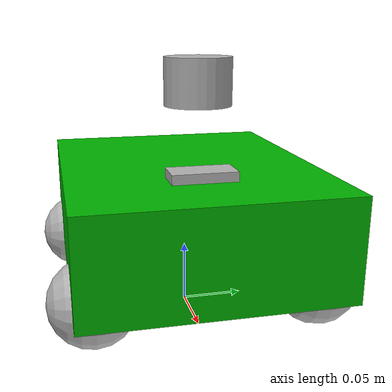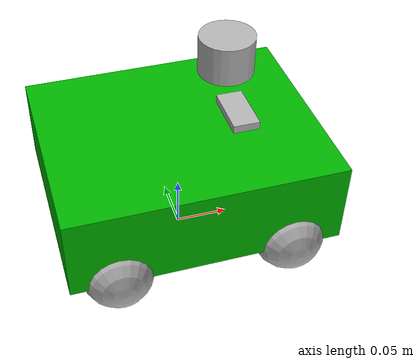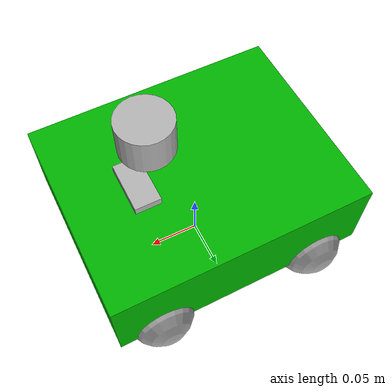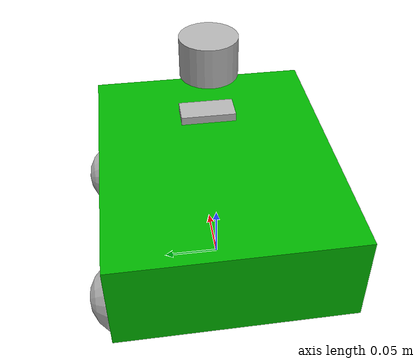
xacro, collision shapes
<?xml version="1.0"?>
<robot xmlns:xacro="http://www.ros.org/wiki/xacro" name="yahboomcar">

  <!-- GEOMETRIA DO ROBÔ                                                      -->

  <link name="base_footprint"/>
  <link name="imu_link"/>

  <link name="base_link">
    <inertial>
      <origin xyz="0.00498197982182523 5.70233829969297E-05 -0.0121008098068578" rpy="0 0 0"/>
      <mass value="0.486218814966626"/>
      <inertia ixx="0.00196277727666921" ixy="2.50447049446755E-07" ixz="0.000140534767811098"
               iyy="0.00457256033711368" iyz="2.68618064993882E-07"  izz="0.00493927269870476"/>
    </inertial>
    <visual>
      <origin xyz="0 0 0" rpy="0 0 0"/>
      <geometry>
        <mesh filename="package://robodog2/meshes/mecanum/base_link_X3.STL"/>
      </geometry>
      <material name="Green"><color rgba="0 0.7 0 1"/></material>
    </visual>
    <collision>
      <origin xyz="0 0 0" rpy="0 0 0"/>
      <geometry>
        <box size="0.25 0.20 0.08"/>
      </geometry>
    </collision>
  </link>

  <joint name="base_joint" type="fixed">
    <parent link="base_footprint"/>
    <child link="base_link"/>
    <origin xyz="0.0 0.0 0.0815" rpy="0 0 0"/>
  </joint>

  <joint name="base_imu" type="fixed">
    <parent link="base_link"/>
    <child link="imu_link"/>
    <origin xyz="-0.06 0.01 0.01" rpy="0 3.1415 1.5707"/>
  </joint>

  <!-- Roda dianteira direita -->
  <link name="front_right_wheel">
    <inertial>
      <origin xyz="1.9051E-06 -2.3183E-07 -0.00064079" rpy="0 0 0"/>
      <mass value="0.051532"/>
      <inertia ixx="1.4595E-05" ixy="-4.3975E-10" ixz="4.415E-10"
               iyy="1.4594E-05" iyz="-1.7476E-09" izz="2.4264E-05"/>
    </inertial>
    <visual>
      <origin xyz="0 0 0" rpy="0 0 0"/>
      <geometry>
        <mesh filename="package://robodog2/meshes/mecanum/front_right_wheel_X3.STL"/>
      </geometry>
      <material name="LightGray"><color rgba="0.7 0.7 0.7 1"/></material>
    </visual>
    <collision>
      <origin xyz="0 0 0" rpy="0 0 0"/>
      <geometry>
        <sphere radius="0.033"/>
      </geometry>
    </collision>
  </link>
  <joint name="front_right_joint" type="continuous">
    <origin xyz="0.08 -0.0845 -0.0389" rpy="-1.5703 0 3.14159"/>
    <parent link="base_link"/>
    <child link="front_right_wheel"/>
    <axis xyz="0 0 -1" rpy="0 0 0"/>
    <limit effort="100" velocity="1"/>
  </joint>

  <!-- Roda dianteira esquerda -->
  <link name="front_left_wheel">
    <inertial>
      <origin xyz="2.3728E-06 -9.4228E-07 0.00064068" rpy="0 0 0"/>
      <mass value="0.051543"/>
      <inertia ixx="1.4597E-05" ixy="-4.7945E-10" ixz="-2.4786E-10"
               iyy="1.4598E-05" iyz="1.7972E-09"  izz="2.4267E-05"/>
    </inertial>
    <visual>
      <origin xyz="0 0 0" rpy="0 0 0"/>
      <geometry>
        <mesh filename="package://robodog2/meshes/mecanum/front_left_wheel_X3.STL"/>
      </geometry>
      <material name="LightGray"/>
    </visual>
    <collision>
      <origin xyz="0 0 0" rpy="0 0 0"/>
      <geometry>
        <sphere radius="0.033"/>
      </geometry>
    </collision>
  </link>
  <joint name="front_left_joint" type="continuous">
    <origin xyz="0.08 0.084492 -0.0389" rpy="1.5703 0 0"/>
    <parent link="base_link"/>
    <child link="front_left_wheel"/>
    <axis xyz="0 0 1" rpy="0 0 0"/>
    <limit effort="100" velocity="1"/>
  </joint>

  <!-- Roda traseira direita -->
  <link name="back_right_wheel">
    <inertial>
      <origin xyz="-1.75924169923403E-06 1.28388821071107E-06 -0.000590549296238266" rpy="0 0 0"/>
      <mass value="0.051540174053366"/>
      <inertia ixx="1.45974152250002E-05" ixy="1.94850559178397E-10"  ixz="-1.61846387282284E-09"
               iyy="1.4596501955693E-05"  iyz="-6.27904057423818E-10" izz="2.42663091380451E-05"/>
    </inertial>
    <visual>
      <origin xyz="0 0 0" rpy="0 0 0"/>
      <geometry>
        <mesh filename="package://robodog2/meshes/mecanum/back_right_wheel_X3.STL"/>
      </geometry>
      <material name="LightGray"/>
    </visual>
    <collision>
      <origin xyz="0 0 0" rpy="0 0 0"/>
      <geometry>
        <sphere radius="0.033"/>
      </geometry>
    </collision>
  </link>
  <joint name="back_right_joint" type="continuous">
    <origin xyz="-0.08 -0.0845 -0.03946" rpy="-1.57 0 3.14159"/>
    <parent link="base_link"/>
    <child link="back_right_wheel"/>
    <axis xyz="0 0 -1" rpy="0 0 0"/>
    <limit effort="100" velocity="1"/>
  </joint>

  <!-- Roda traseira esquerda -->
  <link name="back_left_wheel">
    <inertial>
      <origin xyz="-4.01213085227115E-07 2.04910264598596E-06 0.000590775697051377" rpy="0 0 0"/>
      <mass value="0.0515309299357028"/>
      <inertia ixx="1.45942986129926E-05" ixy="-3.19787215398093E-10" ixz="1.74943062058915E-09"
               iyy="1.45948727598913E-05" iyz="1.61769812110049E-10"  izz="2.4263683888153E-05"/>
    </inertial>
    <visual>
      <origin xyz="0 0 0" rpy="0 0 0"/>
      <geometry>
        <mesh filename="package://robodog2/meshes/mecanum/back_left_wheel_X3.STL"/>
      </geometry>
      <material name="LightGray"/>
    </visual>
    <collision>
      <origin xyz="0 0 0" rpy="0 0 0"/>
      <geometry>
        <sphere radius="0.033"/>
      </geometry>
    </collision>
  </link>
  <joint name="back_left_joint" type="continuous">
    <origin xyz="-0.08 0.084492 -0.03954" rpy="1.5703 0 0"/>
    <parent link="base_link"/>
    <child link="back_left_wheel"/>
    <axis xyz="0 0 1" rpy="0 0 0"/>
    <limit effort="100" velocity="1"/>
  </joint>

  <!-- Sensor LiDAR -->
  <link name="laser_link">
    <inertial>
      <origin xyz="-0.0176558922685589 0.000671805271544437 0.0219302095894866" rpy="0 0 0"/>
      <mass value="0.0483909504209895"/>
      <inertia ixx="1.58456966399128E-05" ixy="-4.23913983850005E-07" ixz="-2.09597897904374E-07"
               iyy="3.89262522903605E-05" iyz="3.24809725932687E-07"  izz="4.86230801106223E-05"/>
    </inertial>
    <visual>
      <origin xyz="0 0 0" rpy="0 0 0"/>
      <geometry>
        <mesh filename="package://robodog2/meshes/sensor/laser_link.STL"/>
      </geometry>
      <material name="LightGray"/>
    </visual>
    <collision>
      <origin xyz="0 0 0" rpy="0 0 0"/>
      <geometry>
        <cylinder radius="0.025" length="0.035"/>
      </geometry>
    </collision>
  </link>
  <joint name="laser_joint" type="fixed">
    <origin xyz="0.0435 5.25826986680105E-05 0.11" rpy="0 0 0"/>
    <parent link="base_link"/>
    <child link="laser_link"/>
  </joint>

  <!-- Câmera (massa zero — apenas visual) -->
  <link name="camera_link">
    <inertial>
      <origin xyz="0 0 0" rpy="0 0 0"/>
      <mass value="0.01"/>
      <inertia ixx="1e-6" ixy="0" ixz="0" iyy="1e-6" iyz="0" izz="1e-6"/>
    </inertial>
    <visual>
      <origin xyz="0 0 0" rpy="0 0 0"/>
      <geometry>
        <mesh filename="package://robodog2/meshes/sensor/camera_link.STL"/>
      </geometry>
      <material name="LightGray"/>
    </visual>
    <collision>
      <origin xyz="0 0 0" rpy="0 0 0"/>
      <geometry>
        <box size="0.025 0.050 0.020"/>
      </geometry>
    </collision>
  </link>
  <joint name="camera_joint" type="fixed">
    <origin xyz="0.057105 1.7948E-05 0.03755" rpy="0 0 0"/>
    <parent link="base_link"/>
    <child link="camera_link"/>
  </joint>

  <!-- PLUGINS GAZEBO (Gazebo Harmonic / Ignition Gazebo 6)                   -->

  <!-- Cores Gazebo -->
  <gazebo reference="base_link"><material>Gazebo/Green</material></gazebo>
  <gazebo reference="front_right_wheel">
    <material>Gazebo/DarkGrey</material>
    <mu>1.0</mu>
    <mu2>0.0</mu2>
    <fdir1>-1 0 -1</fdir1>
  </gazebo>
  <gazebo reference="front_left_wheel">
    <material>Gazebo/DarkGrey</material>
    <mu>1.0</mu>
    <mu2>0.0</mu2>
    <fdir1>1 0 -1</fdir1>
  </gazebo>
  <gazebo reference="back_right_wheel">
    <material>Gazebo/DarkGrey</material>
    <mu>1.0</mu>
    <mu2>0.0</mu2>
    <fdir1>-1 0 1</fdir1>
  </gazebo>
  <gazebo reference="back_left_wheel">
    <material>Gazebo/DarkGrey</material>
    <mu>1.0</mu>
    <mu2>0.0</mu2>
    <fdir1>1 0 1</fdir1>
  </gazebo>
  <gazebo reference="laser_link"><material>Gazebo/FlatBlack</material></gazebo>

  <gazebo>
    <plugin filename="gz-sim-velocity-control-system"
            name="gz::sim::systems::VelocityControl">
    </plugin>
  </gazebo>

  <!-- Publica /odom e TF odom→base_footprint observando o movimento real do modelo. -->
  <gazebo>
    <plugin filename="ignition-gazebo-odometry-publisher-system"
            name="ignition::gazebo::systems::OdometryPublisher">
      <odom_frame>odom</odom_frame>
      <robot_base_frame>base_footprint</robot_base_frame>
      <odom_topic>odom</odom_topic>
      <tf_topic>tf</tf_topic>
      <odom_publish_frequency>10</odom_publish_frequency>
      <dimensions>2</dimensions>
    </plugin>
  </gazebo>

  <!-- Publica /joint_states das 4 rodas -->
  <gazebo>
    <plugin filename="ignition-gazebo-joint-state-publisher-system"
            name="ignition::gazebo::systems::JointStatePublisher">
      <topic>joint_states</topic>
      <joint_name>front_left_joint</joint_name>
      <joint_name>front_right_joint</joint_name>
      <joint_name>back_left_joint</joint_name>
      <joint_name>back_right_joint</joint_name>
    </plugin>
  </gazebo>

  <!--
    LiDAR 360° nativo do Gazebo Harmonic (gpu_lidar).
    Publica em /scan via bridge YAML (rbd_x3_bridge.yaml).
  -->
  <gazebo reference="laser_link">
    <sensor name="lds_lfcd_sensor" type="gpu_lidar">
      <pose>0 0 0 0 0 0</pose>
      <update_rate>6</update_rate>
      <topic>scan</topic>
      <gz_frame_id>laser_link</gz_frame_id>
      <lidar>
        <scan>
          <horizontal>
            <samples>360</samples>
            <resolution>1</resolution>
            <min_angle>0.0</min_angle>
            <max_angle>6.28318530718</max_angle>
          </horizontal>
        </scan>
        <range>
          <min>0.12</min>
          <max>12.0</max>
          <resolution>0.015</resolution>
        </range>
        <noise>
          <type>gaussian</type>
          <mean>0.0</mean>
          <stddev>0.01</stddev>
        </noise>
      </lidar>
    </sensor>
  </gazebo>

</robot>
